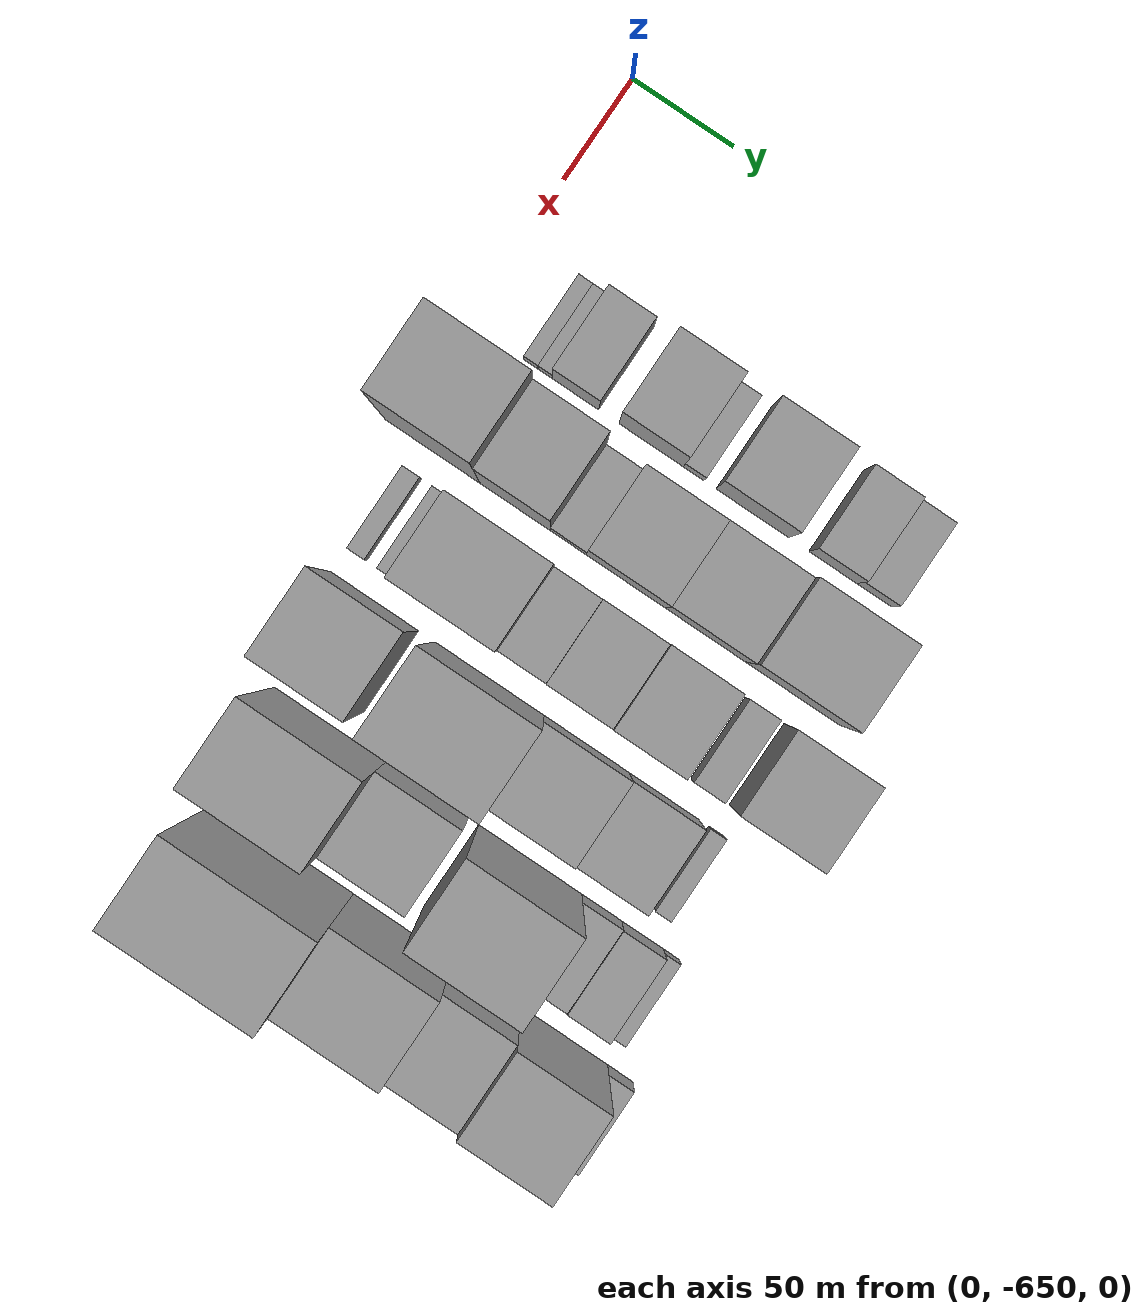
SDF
<sdf version="1.6">
 <world name="default">
  <model name="building_8">
   <static>1</static>
   <pose>100.0000 -619.2397 0 0.000000 0.000000 0.000000</pose>
   <link name="link">
    <pose>0 0 7.50 0 0 0</pose>
    <collision name="collision"><geometry><box><size>40.0000 6.9262 15.0000</size></box></geometry></collision>
    <visual name="visual">
     <cast_shadows>0</cast_shadows>
     <geometry><box><size>40.0000 6.9262 15.0000</size></box></geometry>
     <material>
      <script>
       <uri>model://grey_wall/materials/scripts</uri>
       <uri>model://grey_wall/materials/textures</uri>
       <name>vrc/grey_wall</name>
      </script>
     </material>
    </visual>
   </link>
  </model>
  <model name="building_9">
   <static>1</static>
   <pose>100.0000 -612.2614 0 0.000000 0.000000 0.000000</pose>
   <link name="link">
    <pose>0 0 7.50 0 0 0</pose>
    <collision name="collision"><geometry><box><size>40.0000 7.0304 15.0000</size></box></geometry></collision>
    <visual name="visual">
     <cast_shadows>0</cast_shadows>
     <geometry><box><size>40.0000 7.0304 15.0000</size></box></geometry>
     <material>
      <script>
       <uri>model://grey_wall/materials/scripts</uri>
       <uri>model://grey_wall/materials/textures</uri>
       <name>vrc/grey_wall</name>
      </script>
     </material>
    </visual>
   </link>
  </model>
  <model name="building_10">
   <static>1</static>
   <pose>100.0000 -597.3132 0 0.000000 0.000000 0.000000</pose>
   <link name="link">
    <pose>0 0 22.50 0 0 0</pose>
    <collision name="collision"><geometry><box><size>40.0000 22.8660 45.0000</size></box></geometry></collision>
    <visual name="visual">
     <cast_shadows>0</cast_shadows>
     <geometry><box><size>40.0000 22.8660 45.0000</size></box></geometry>
     <material>
      <script>
       <uri>model://grey_wall/materials/scripts</uri>
       <uri>model://grey_wall/materials/textures</uri>
       <name>vrc/grey_wall</name>
      </script>
     </material>
    </visual>
   </link>
  </model>
  <model name="building_11">
   <static>1</static>
   <pose>100.0000 -560.0543 0 0.000000 0.000000 0.000000</pose>
   <link name="link">
    <pose>0 0 31.50 0 0 0</pose>
    <collision name="collision"><geometry><box><size>40.0000 31.6517 63.0000</size></box></geometry></collision>
    <visual name="visual">
     <cast_shadows>0</cast_shadows>
     <geometry><box><size>40.0000 31.6517 63.0000</size></box></geometry>
     <material>
      <script>
       <uri>model://grey_wall/materials/scripts</uri>
       <uri>model://grey_wall/materials/textures</uri>
       <name>vrc/grey_wall</name>
      </script>
     </material>
    </visual>
   </link>
  </model>
  <model name="building_12">
   <static>1</static>
   <pose>100.0000 -539.1166 0 0.000000 0.000000 0.000000</pose>
   <link name="link">
    <pose>0 0 10.50 0 0 0</pose>
    <collision name="collision"><geometry><box><size>40.0000 10.2237 21.0000</size></box></geometry></collision>
    <visual name="visual">
     <cast_shadows>0</cast_shadows>
     <geometry><box><size>40.0000 10.2237 21.0000</size></box></geometry>
     <material>
      <script>
       <uri>model://grey_wall/materials/scripts</uri>
       <uri>model://grey_wall/materials/textures</uri>
       <name>vrc/grey_wall</name>
      </script>
     </material>
    </visual>
   </link>
  </model>
  <model name="building_13">
   <static>1</static>
   <pose>100.0000 -510.1576 0 0.000000 0.000000 0.000000</pose>
   <link name="link">
    <pose>0 0 31.50 0 0 0</pose>
    <collision name="collision"><geometry><box><size>40.0000 35.6943 63.0000</size></box></geometry></collision>
    <visual name="visual">
     <cast_shadows>0</cast_shadows>
     <geometry><box><size>40.0000 35.6943 63.0000</size></box></geometry>
     <material>
      <script>
       <uri>model://grey_wall/materials/scripts</uri>
       <uri>model://grey_wall/materials/textures</uri>
       <name>vrc/grey_wall</name>
      </script>
     </material>
    </visual>
   </link>
  </model>
  <model name="building_14">
   <static>1</static>
   <pose>100.0000 -470.5793 0 0.000000 0.000000 0.000000</pose>
   <link name="link">
    <pose>0 0 22.50 0 0 0</pose>
    <collision name="collision"><geometry><box><size>40.0000 23.4623 45.0000</size></box></geometry></collision>
    <visual name="visual">
     <cast_shadows>0</cast_shadows>
     <geometry><box><size>40.0000 23.4623 45.0000</size></box></geometry>
     <material>
      <script>
       <uri>model://grey_wall/materials/scripts</uri>
       <uri>model://grey_wall/materials/textures</uri>
       <name>vrc/grey_wall</name>
      </script>
     </material>
    </visual>
   </link>
  </model>
  <model name="building_15">
   <static>1</static>
   <pose>100.0000 -450.2433 0 0.000000 0.000000 0.000000</pose>
   <link name="link">
    <pose>0 0 16.50 0 0 0</pose>
    <collision name="collision"><geometry><box><size>40.0000 17.2098 33.0000</size></box></geometry></collision>
    <visual name="visual">
     <cast_shadows>0</cast_shadows>
     <geometry><box><size>40.0000 17.2098 33.0000</size></box></geometry>
     <material>
      <script>
       <uri>model://grey_wall/materials/scripts</uri>
       <uri>model://grey_wall/materials/textures</uri>
       <name>vrc/grey_wall</name>
      </script>
     </material>
    </visual>
   </link>
  </model>
  <model name="building_58">
   <static>1</static>
   <pose>152.0000 -632.5312 0 0.000000 0.000000 0.000000</pose>
   <link name="link">
    <pose>0 0 73.50 0 0 0</pose>
    <collision name="collision"><geometry><box><size>40.0000 46.6653 147.0000</size></box></geometry></collision>
    <visual name="visual">
     <cast_shadows>0</cast_shadows>
     <geometry><box><size>40.0000 46.6653 147.0000</size></box></geometry>
     <material>
      <script>
       <uri>model://grey_wall/materials/scripts</uri>
       <uri>model://grey_wall/materials/textures</uri>
       <name>vrc/grey_wall</name>
      </script>
     </material>
    </visual>
   </link>
  </model>
  <model name="building_59">
   <static>1</static>
   <pose>152.0000 -591.9203 0 0.000000 0.000000 0.000000</pose>
   <link name="link">
    <pose>0 0 55.50 0 0 0</pose>
    <collision name="collision"><geometry><box><size>40.0000 34.5565 111.0000</size></box></geometry></collision>
    <visual name="visual">
     <cast_shadows>0</cast_shadows>
     <geometry><box><size>40.0000 34.5565 111.0000</size></box></geometry>
     <material>
      <script>
       <uri>model://grey_wall/materials/scripts</uri>
       <uri>model://grey_wall/materials/textures</uri>
       <name>vrc/grey_wall</name>
      </script>
     </material>
    </visual>
   </link>
  </model>
  <model name="building_60">
   <static>1</static>
   <pose>152.0000 -565.8311 0 0.000000 0.000000 0.000000</pose>
   <link name="link">
    <pose>0 0 16.50 0 0 0</pose>
    <collision name="collision"><geometry><box><size>40.0000 17.6219 33.0000</size></box></geometry></collision>
    <visual name="visual">
     <cast_shadows>0</cast_shadows>
     <geometry><box><size>40.0000 17.6219 33.0000</size></box></geometry>
     <material>
      <script>
       <uri>model://grey_wall/materials/scripts</uri>
       <uri>model://grey_wall/materials/textures</uri>
       <name>vrc/grey_wall</name>
      </script>
     </material>
    </visual>
   </link>
  </model>
  <model name="building_61">
   <static>1</static>
   <pose>152.0000 -537.6572 0 0.000000 0.000000 0.000000</pose>
   <link name="link">
    <pose>0 0 36.00 0 0 0</pose>
    <collision name="collision"><geometry><box><size>40.0000 38.7258 72.0000</size></box></geometry></collision>
    <visual name="visual">
     <cast_shadows>0</cast_shadows>
     <geometry><box><size>40.0000 38.7258 72.0000</size></box></geometry>
     <material>
      <script>
       <uri>model://grey_wall/materials/scripts</uri>
       <uri>model://grey_wall/materials/textures</uri>
       <name>vrc/grey_wall</name>
      </script>
     </material>
    </visual>
   </link>
  </model>
  <model name="building_62">
   <static>1</static>
   <pose>152.0000 -498.5605 0 0.000000 0.000000 0.000000</pose>
   <link name="link">
    <pose>0 0 36.00 0 0 0</pose>
    <collision name="collision"><geometry><box><size>40.0000 39.4676 72.0000</size></box></geometry></collision>
    <visual name="visual">
     <cast_shadows>0</cast_shadows>
     <geometry><box><size>40.0000 39.4676 72.0000</size></box></geometry>
     <material>
      <script>
       <uri>model://grey_wall/materials/scripts</uri>
       <uri>model://grey_wall/materials/textures</uri>
       <name>vrc/grey_wall</name>
      </script>
     </material>
    </visual>
   </link>
  </model>
  <model name="building_63">
   <static>1</static>
   <pose>152.0000 -455.6857 0 0.000000 0.000000 0.000000</pose>
   <link name="link">
    <pose>0 0 45.00 0 0 0</pose>
    <collision name="collision"><geometry><box><size>40.0000 46.2821 90.0000</size></box></geometry></collision>
    <visual name="visual">
     <cast_shadows>0</cast_shadows>
     <geometry><box><size>40.0000 46.2821 90.0000</size></box></geometry>
     <material>
      <script>
       <uri>model://grey_wall/materials/scripts</uri>
       <uri>model://grey_wall/materials/textures</uri>
       <name>vrc/grey_wall</name>
      </script>
     </material>
    </visual>
   </link>
  </model>
  <model name="building_111">
   <static>1</static>
   <pose>204.0000 -634.2412 0 0.000000 0.000000 0.000000</pose>
   <link name="link">
    <pose>0 0 9.00 0 0 0</pose>
    <collision name="collision"><geometry><box><size>40.0000 8.4790 18.0000</size></box></geometry></collision>
    <visual name="visual">
     <cast_shadows>0</cast_shadows>
     <geometry><box><size>40.0000 8.4790 18.0000</size></box></geometry>
     <material>
      <script>
       <uri>model://grey_wall/materials/scripts</uri>
       <uri>model://grey_wall/materials/textures</uri>
       <name>vrc/grey_wall</name>
      </script>
     </material>
    </visual>
   </link>
  </model>
  <model name="building_112">
   <static>1</static>
   <pose>204.0000 -619.5519 0 0.000000 0.000000 0.000000</pose>
   <link name="link">
    <pose>0 0 9.00 0 0 0</pose>
    <collision name="collision"><geometry><box><size>40.0000 8.8997 18.0000</size></box></geometry></collision>
    <visual name="visual">
     <cast_shadows>0</cast_shadows>
     <geometry><box><size>40.0000 8.8997 18.0000</size></box></geometry>
     <material>
      <script>
       <uri>model://grey_wall/materials/scripts</uri>
       <uri>model://grey_wall/materials/textures</uri>
       <name>vrc/grey_wall</name>
      </script>
     </material>
    </visual>
   </link>
  </model>
  <model name="building_113">
   <static>1</static>
   <pose>204.0000 -589.9599 0 0.000000 0.000000 0.000000</pose>
   <link name="link">
    <pose>0 0 45.00 0 0 0</pose>
    <collision name="collision"><geometry><box><size>40.0000 50.2842 90.0000</size></box></geometry></collision>
    <visual name="visual">
     <cast_shadows>0</cast_shadows>
     <geometry><box><size>40.0000 50.2842 90.0000</size></box></geometry>
     <material>
      <script>
       <uri>model://grey_wall/materials/scripts</uri>
       <uri>model://grey_wall/materials/textures</uri>
       <name>vrc/grey_wall</name>
      </script>
     </material>
    </visual>
   </link>
  </model>
  <model name="building_114">
   <static>1</static>
   <pose>204.0000 -553.2080 0 0.000000 0.000000 0.000000</pose>
   <link name="link">
    <pose>0 0 22.50 0 0 0</pose>
    <collision name="collision"><geometry><box><size>40.0000 23.2197 45.0000</size></box></geometry></collision>
    <visual name="visual">
     <cast_shadows>0</cast_shadows>
     <geometry><box><size>40.0000 23.2197 45.0000</size></box></geometry>
     <material>
      <script>
       <uri>model://grey_wall/materials/scripts</uri>
       <uri>model://grey_wall/materials/textures</uri>
       <name>vrc/grey_wall</name>
      </script>
     </material>
    </visual>
   </link>
  </model>
  <model name="building_115">
   <static>1</static>
   <pose>204.0000 -525.7951 0 0.000000 0.000000 0.000000</pose>
   <link name="link">
    <pose>0 0 27.00 0 0 0</pose>
    <collision name="collision"><geometry><box><size>40.0000 31.6062 54.0000</size></box></geometry></collision>
    <visual name="visual">
     <cast_shadows>0</cast_shadows>
     <geometry><box><size>40.0000 31.6062 54.0000</size></box></geometry>
     <material>
      <script>
       <uri>model://grey_wall/materials/scripts</uri>
       <uri>model://grey_wall/materials/textures</uri>
       <name>vrc/grey_wall</name>
      </script>
     </material>
    </visual>
   </link>
  </model>
  <model name="building_116">
   <static>1</static>
   <pose>204.0000 -492.7894 0 0.000000 0.000000 0.000000</pose>
   <link name="link">
    <pose>0 0 31.50 0 0 0</pose>
    <collision name="collision"><geometry><box><size>40.0000 34.4052 63.0000</size></box></geometry></collision>
    <visual name="visual">
     <cast_shadows>0</cast_shadows>
     <geometry><box><size>40.0000 34.4052 63.0000</size></box></geometry>
     <material>
      <script>
       <uri>model://grey_wall/materials/scripts</uri>
       <uri>model://grey_wall/materials/textures</uri>
       <name>vrc/grey_wall</name>
      </script>
     </material>
    </visual>
   </link>
  </model>
  <model name="building_117">
   <static>1</static>
   <pose>204.0000 -463.0438 0 0.000000 0.000000 0.000000</pose>
   <link name="link">
    <pose>0 0 15.00 0 0 0</pose>
    <collision name="collision"><geometry><box><size>40.0000 15.0861 30.0000</size></box></geometry></collision>
    <visual name="visual">
     <cast_shadows>0</cast_shadows>
     <geometry><box><size>40.0000 15.0861 30.0000</size></box></geometry>
     <material>
      <script>
       <uri>model://grey_wall/materials/scripts</uri>
       <uri>model://grey_wall/materials/textures</uri>
       <name>vrc/grey_wall</name>
      </script>
     </material>
    </visual>
   </link>
  </model>
  <model name="building_118">
   <static>1</static>
   <pose>204.0000 -431.4433 0 0.000000 0.000000 0.000000</pose>
   <link name="link">
    <pose>0 0 34.50 0 0 0</pose>
    <collision name="collision"><geometry><box><size>40.0000 40.1149 69.0000</size></box></geometry></collision>
    <visual name="visual">
     <cast_shadows>0</cast_shadows>
     <geometry><box><size>40.0000 40.1149 69.0000</size></box></geometry>
     <material>
      <script>
       <uri>model://grey_wall/materials/scripts</uri>
       <uri>model://grey_wall/materials/textures</uri>
       <name>vrc/grey_wall</name>
      </script>
     </material>
    </visual>
   </link>
  </model>
  <model name="building_166">
   <static>1</static>
   <pose>256.0000 -618.1975 0 0.000000 0.000000 0.000000</pose>
   <link name="link">
    <pose>0 0 58.50 0 0 0</pose>
    <collision name="collision"><geometry><box><size>40.0000 43.5642 117.0000</size></box></geometry></collision>
    <visual name="visual">
     <cast_shadows>0</cast_shadows>
     <geometry><box><size>40.0000 43.5642 117.0000</size></box></geometry>
     <material>
      <script>
       <uri>model://grey_wall/materials/scripts</uri>
       <uri>model://grey_wall/materials/textures</uri>
       <name>vrc/grey_wall</name>
      </script>
     </material>
    </visual>
   </link>
  </model>
  <model name="building_167">
   <static>1</static>
   <pose>256.0000 -561.5431 0 0.000000 0.000000 0.000000</pose>
   <link name="link">
    <pose>0 0 79.50 0 0 0</pose>
    <collision name="collision"><geometry><box><size>40.0000 53.7446 159.0000</size></box></geometry></collision>
    <visual name="visual">
     <cast_shadows>0</cast_shadows>
     <geometry><box><size>40.0000 53.7446 159.0000</size></box></geometry>
     <material>
      <script>
       <uri>model://grey_wall/materials/scripts</uri>
       <uri>model://grey_wall/materials/textures</uri>
       <name>vrc/grey_wall</name>
      </script>
     </material>
    </visual>
   </link>
  </model>
  <model name="building_168">
   <static>1</static>
   <pose>256.0000 -513.7282 0 0.000000 0.000000 0.000000</pose>
   <link name="link">
    <pose>0 0 36.00 0 0 0</pose>
    <collision name="collision"><geometry><box><size>40.0000 41.8852 72.0000</size></box></geometry></collision>
    <visual name="visual">
     <cast_shadows>0</cast_shadows>
     <geometry><box><size>40.0000 41.8852 72.0000</size></box></geometry>
     <material>
      <script>
       <uri>model://grey_wall/materials/scripts</uri>
       <uri>model://grey_wall/materials/textures</uri>
       <name>vrc/grey_wall</name>
      </script>
     </material>
    </visual>
   </link>
  </model>
  <model name="building_169">
   <static>1</static>
   <pose>256.0000 -475.7329 0 0.000000 0.000000 0.000000</pose>
   <link name="link">
    <pose>0 0 31.50 0 0 0</pose>
    <collision name="collision"><geometry><box><size>40.0000 34.1055 63.0000</size></box></geometry></collision>
    <visual name="visual">
     <cast_shadows>0</cast_shadows>
     <geometry><box><size>40.0000 34.1055 63.0000</size></box></geometry>
     <material>
      <script>
       <uri>model://grey_wall/materials/scripts</uri>
       <uri>model://grey_wall/materials/textures</uri>
       <name>vrc/grey_wall</name>
      </script>
     </material>
    </visual>
   </link>
  </model>
  <model name="building_170">
   <static>1</static>
   <pose>256.0000 -449.7583 0 0.000000 0.000000 0.000000</pose>
   <link name="link">
    <pose>0 0 9.00 0 0 0</pose>
    <collision name="collision"><geometry><box><size>40.0000 7.8437 18.0000</size></box></geometry></collision>
    <visual name="visual">
     <cast_shadows>0</cast_shadows>
     <geometry><box><size>40.0000 7.8437 18.0000</size></box></geometry>
     <material>
      <script>
       <uri>model://grey_wall/materials/scripts</uri>
       <uri>model://grey_wall/materials/textures</uri>
       <name>vrc/grey_wall</name>
      </script>
     </material>
    </visual>
   </link>
  </model>
  <model name="building_215">
   <static>1</static>
   <pose>308.0000 -605.0298 0 0.000000 0.000000 0.000000</pose>
   <link name="link">
    <pose>0 0 70.50 0 0 0</pose>
    <collision name="collision"><geometry><box><size>40.0000 54.8774 141.0000</size></box></geometry></collision>
    <visual name="visual">
     <cast_shadows>0</cast_shadows>
     <geometry><box><size>40.0000 54.8774 141.0000</size></box></geometry>
     <material>
      <script>
       <uri>model://grey_wall/materials/scripts</uri>
       <uri>model://grey_wall/materials/textures</uri>
       <name>vrc/grey_wall</name>
      </script>
     </material>
    </visual>
   </link>
  </model>
  <model name="building_216">
   <static>1</static>
   <pose>308.0000 -557.2529 0 0.000000 0.000000 0.000000</pose>
   <link name="link">
    <pose>0 0 36.00 0 0 0</pose>
    <collision name="collision"><geometry><box><size>40.0000 40.6764 72.0000</size></box></geometry></collision>
    <visual name="visual">
     <cast_shadows>0</cast_shadows>
     <geometry><box><size>40.0000 40.6764 72.0000</size></box></geometry>
     <material>
      <script>
       <uri>model://grey_wall/materials/scripts</uri>
       <uri>model://grey_wall/materials/textures</uri>
       <name>vrc/grey_wall</name>
      </script>
     </material>
    </visual>
   </link>
  </model>
  <model name="building_217">
   <static>1</static>
   <pose>308.0000 -506.5385 0 0.000000 0.000000 0.000000</pose>
   <link name="link">
    <pose>0 0 81.00 0 0 0</pose>
    <collision name="collision"><geometry><box><size>40.0000 50.7523 162.0000</size></box></geometry></collision>
    <visual name="visual">
     <cast_shadows>0</cast_shadows>
     <geometry><box><size>40.0000 50.7523 162.0000</size></box></geometry>
     <material>
      <script>
       <uri>model://grey_wall/materials/scripts</uri>
       <uri>model://grey_wall/materials/textures</uri>
       <name>vrc/grey_wall</name>
      </script>
     </material>
    </visual>
   </link>
  </model>
  <model name="building_218">
   <static>1</static>
   <pose>308.0000 -471.3192 0 0.000000 0.000000 0.000000</pose>
   <link name="link">
    <pose>0 0 18.00 0 0 0</pose>
    <collision name="collision"><geometry><box><size>40.0000 19.6863 36.0000</size></box></geometry></collision>
    <visual name="visual">
     <cast_shadows>0</cast_shadows>
     <geometry><box><size>40.0000 19.6863 36.0000</size></box></geometry>
     <material>
      <script>
       <uri>model://grey_wall/materials/scripts</uri>
       <uri>model://grey_wall/materials/textures</uri>
       <name>vrc/grey_wall</name>
      </script>
     </material>
    </visual>
   </link>
  </model>
  <model name="building_219">
   <static>1</static>
   <pose>308.0000 -451.1763 0 0.000000 0.000000 0.000000</pose>
   <link name="link">
    <pose>0 0 19.50 0 0 0</pose>
    <collision name="collision"><geometry><box><size>40.0000 20.5996 39.0000</size></box></geometry></collision>
    <visual name="visual">
     <cast_shadows>0</cast_shadows>
     <geometry><box><size>40.0000 20.5996 39.0000</size></box></geometry>
     <material>
      <script>
       <uri>model://grey_wall/materials/scripts</uri>
       <uri>model://grey_wall/materials/textures</uri>
       <name>vrc/grey_wall</name>
      </script>
     </material>
    </visual>
   </link>
  </model>
  <model name="building_220">
   <static>1</static>
   <pose>308.0000 -436.9733 0 0.000000 0.000000 0.000000</pose>
   <link name="link">
    <pose>0 0 9.00 0 0 0</pose>
    <collision name="collision"><geometry><box><size>40.0000 7.8064 18.0000</size></box></geometry></collision>
    <visual name="visual">
     <cast_shadows>0</cast_shadows>
     <geometry><box><size>40.0000 7.8064 18.0000</size></box></geometry>
     <material>
      <script>
       <uri>model://grey_wall/materials/scripts</uri>
       <uri>model://grey_wall/materials/textures</uri>
       <name>vrc/grey_wall</name>
      </script>
     </material>
    </visual>
   </link>
  </model>
  <model name="building_272">
   <static>1</static>
   <pose>360.0000 -592.0100 0 0.000000 0.000000 0.000000</pose>
   <link name="link">
    <pose>0 0 87.00 0 0 0</pose>
    <collision name="collision"><geometry><box><size>40.0000 66.9595 174.0000</size></box></geometry></collision>
    <visual name="visual">
     <cast_shadows>0</cast_shadows>
     <geometry><box><size>40.0000 66.9595 174.0000</size></box></geometry>
     <material>
      <script>
       <uri>model://grey_wall/materials/scripts</uri>
       <uri>model://grey_wall/materials/textures</uri>
       <name>vrc/grey_wall</name>
      </script>
     </material>
    </visual>
   </link>
  </model>
  <model name="building_273">
   <static>1</static>
   <pose>360.0000 -534.1410 0 0.000000 0.000000 0.000000</pose>
   <link name="link">
    <pose>0 0 63.00 0 0 0</pose>
    <collision name="collision"><geometry><box><size>40.0000 48.7787 126.0000</size></box></geometry></collision>
    <visual name="visual">
     <cast_shadows>0</cast_shadows>
     <geometry><box><size>40.0000 48.7787 126.0000</size></box></geometry>
     <material>
      <script>
       <uri>model://grey_wall/materials/scripts</uri>
       <uri>model://grey_wall/materials/textures</uri>
       <name>vrc/grey_wall</name>
      </script>
     </material>
    </visual>
   </link>
  </model>
  <model name="building_274">
   <static>1</static>
   <pose>360.0000 -492.8565 0 0.000000 0.000000 0.000000</pose>
   <link name="link">
    <pose>0 0 52.50 0 0 0</pose>
    <collision name="collision"><geometry><box><size>40.0000 33.7903 105.0000</size></box></geometry></collision>
    <visual name="visual">
     <cast_shadows>0</cast_shadows>
     <geometry><box><size>40.0000 33.7903 105.0000</size></box></geometry>
     <material>
      <script>
       <uri>model://grey_wall/materials/scripts</uri>
       <uri>model://grey_wall/materials/textures</uri>
       <name>vrc/grey_wall</name>
      </script>
     </material>
    </visual>
   </link>
  </model>
  <model name="building_275">
   <static>1</static>
   <pose>360.0000 -454.6950 0 0.000000 0.000000 0.000000</pose>
   <link name="link">
    <pose>0 0 60.00 0 0 0</pose>
    <collision name="collision"><geometry><box><size>40.0000 42.5326 120.0000</size></box></geometry></collision>
    <visual name="visual">
     <cast_shadows>0</cast_shadows>
     <geometry><box><size>40.0000 42.5326 120.0000</size></box></geometry>
     <material>
      <script>
       <uri>model://grey_wall/materials/scripts</uri>
       <uri>model://grey_wall/materials/textures</uri>
       <name>vrc/grey_wall</name>
      </script>
     </material>
    </visual>
   </link>
  </model>
  <model name="building_276">
   <static>1</static>
   <pose>360.0000 -427.2458 0 0.000000 0.000000 0.000000</pose>
   <link name="link">
    <pose>0 0 13.50 0 0 0</pose>
    <collision name="collision"><geometry><box><size>40.0000 12.3660 27.0000</size></box></geometry></collision>
    <visual name="visual">
     <cast_shadows>0</cast_shadows>
     <geometry><box><size>40.0000 12.3660 27.0000</size></box></geometry>
     <material>
      <script>
       <uri>model://grey_wall/materials/scripts</uri>
       <uri>model://grey_wall/materials/textures</uri>
       <name>vrc/grey_wall</name>
      </script>
     </material>
    </visual>
   </link>
  </model>
 </world>
</sdf>
